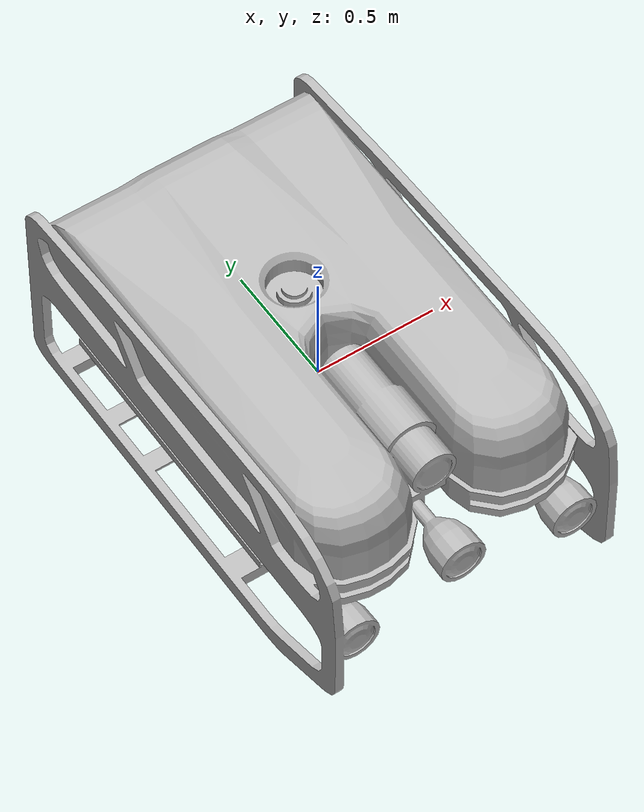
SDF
<?xml version='1.0'?>
<sdf version='1.6'>
  <model name='bluetang'>
    <link name='base_link'>
      <static>true</static>
      <self_collide>0</self_collide>
      <pose frame=''>0 0 0 0 -0 0</pose>
      <inertial>
        <mass>1</mass>
        <pose frame=''>0 0 0 0 -0 0</pose>
        <inertia>
          <ixx>1</ixx>
          <ixy>0</ixy>
          <ixz>0</ixz>
          <iyy>1</iyy>
          <iyz>0</iyz>
          <izz>1</izz>
        </inertia>
      </inertial>
      <visual name='visual'>
        <pose frame=''>0 0 0 0 -0 0</pose>
        <geometry>
          <mesh>
            <uri>model://Bluetang/mesh/SAAB_Falcon.dae</uri>
          </mesh>
        </geometry>
        <transparency>0</transparency>
        <cast_shadows>1</cast_shadows>
      </visual>
      <collision name='collision'>
        <laser_retro>0</laser_retro>
        <max_contacts>10</max_contacts>
        <pose frame=''>0 0 -0.05 0 -0 0</pose>
        <geometry>
          <box>
            <size>1.2 2 0.96</size>
          </box>
        </geometry>
      </collision>
    </link>
    <allow_auto_disable>1</allow_auto_disable>
  </model>
</sdf>
